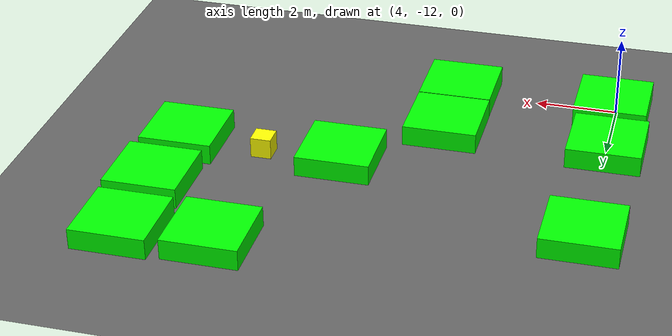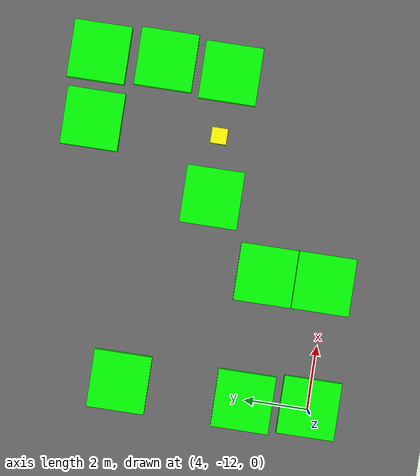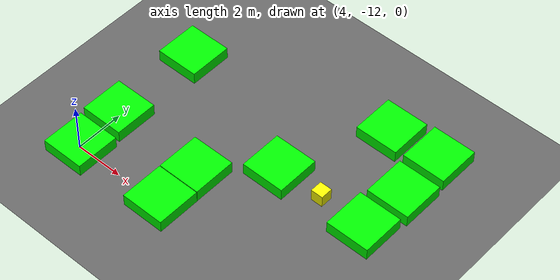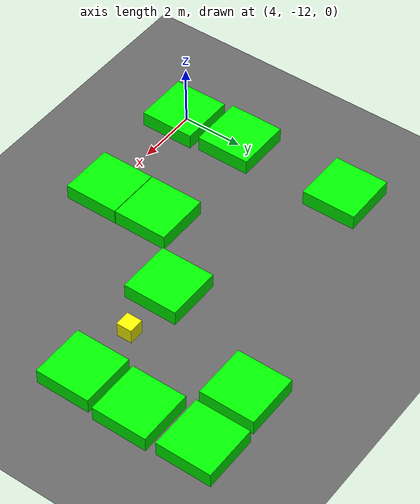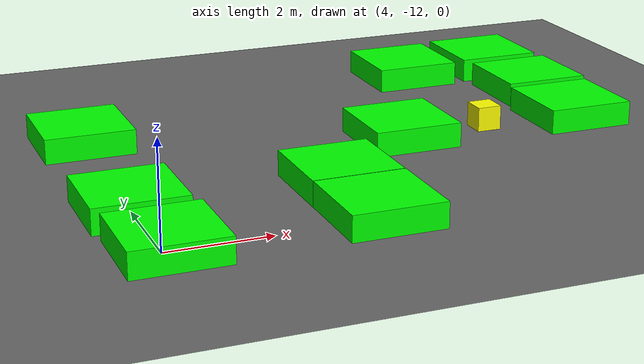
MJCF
<mujoco model="lvl5_corridor_obs10_dlong_depth3_seed50">
    <compiler angle="degree" coordinate="local" inertiafromgeom="true"/>
    <option integrator="RK4" timestep="0.01"/>

    <asset>
        <texture builtin="gradient" height="100" rgb1="0.6 0.8 1" rgb2="0 0 0" type="skybox" width="100"/>
        <texture name="floor_texture" type="2d" builtin="checker" width="100" height="100" rgb1="0 0 0" rgb2="0.8 0.8 0.8"/>
        <material name="MatPlane" reflectance="0.5" shininess="1" specular="1" texrepeat="10 10" texture="floor_texture"/>
    </asset>

    <!-- Excluding the contact between the agent and the goal, and the agent and the floor -->
    <contact>
        <exclude body1="agent" body2="goal"/>
        <exclude body1 = "agent" body2 = "floor"/>
    </contact>

    <extension>
        <plugin plugin = "mujoco.pid">
            <instance name = "pid1">
                <config key="kp" value="2"/>
                <config key="ki" value="0"/>
                <config key="kd" value="55"/>
            </instance>
        </plugin>
    </extension>

    <worldbody>
        <light cutoff="100" diffuse="1 1 1" dir="-0 0 -1.3" directional="true" exponent="1" pos="0 0 1.3" specular=".1 .1 .1"/>
        <body name="floor" pos="0 0 0">
            <geom name="floor_geom" type="plane" size="20 20 0.1" material="MatPlane"/>
        </body>

                <body name="goal" pos="0.0000 0.0000 0">
            <geom name="goal_geom" type="plane" size="0.5 0.5 1" pos="0 0 0" rgba="1 0 0 1"/>
        </body>

                <body name="agent" pos="12.0000 -8.0000 0.250">
            <joint name="j1" type="slide" axis ="1 0 0 "/>
            <joint name="j2" type="slide" axis ="0 1 0 "/>
            <geom name="agent_geom" type="box" size="0.25 0.25 0.250" rgba="1 1 0 1"/>
        </body>

        <body name="obstacle1" pos="11.9380 -4.0507 0.250">  <geom name="obstacle1_geom" type="box" size="0.9000 0.9000 0.250" rgba="0 1 0 1"/></body>
        <body name="obstacle2" pos="14.0141 -3.9519 0.250">  <geom name="obstacle2_geom" type="box" size="0.9000 0.9000 0.250" rgba="0 1 0 1"/></body>
        <body name="obstacle3" pos="4.0168 -6.0905 0.250">  <geom name="obstacle3_geom" type="box" size="0.9000 0.9000 0.250" rgba="0 1 0 1"/></body>
        <body name="obstacle4" pos="14.0861 -6.0397 0.250">  <geom name="obstacle4_geom" type="box" size="0.9000 0.9000 0.250" rgba="0 1 0 1"/></body>
        <body name="obstacle5" pos="10.0903 -8.0684 0.250">  <geom name="obstacle5_geom" type="box" size="0.9000 0.9000 0.250" rgba="0 1 0 1"/></body>
        <body name="obstacle6" pos="13.9723 -8.0698 0.250">  <geom name="obstacle6_geom" type="box" size="0.9000 0.9000 0.250" rgba="0 1 0 1"/></body>
        <body name="obstacle7" pos="3.9881 -9.9800 0.250">  <geom name="obstacle7_geom" type="box" size="0.9000 0.9000 0.250" rgba="0 1 0 1"/></body>
        <body name="obstacle8" pos="7.9568 -10.0845 0.250">  <geom name="obstacle8_geom" type="box" size="0.9000 0.9000 0.250" rgba="0 1 0 1"/></body>
        <body name="obstacle9" pos="4.0903 -12.0233 0.250">  <geom name="obstacle9_geom" type="box" size="0.9000 0.9000 0.250" rgba="0 1 0 1"/></body>
        <body name="obstacle10" pos="7.9622 -11.9033 0.250">  <geom name="obstacle10_geom" type="box" size="0.9000 0.9000 0.250" rgba="0 1 0 1"/></body>

    </worldbody>

    <sensor>
<!-- SENSORS -->

        <distance name="dist1" geom1="agent_geom" geom2="obstacle1_geom" cutoff="1.5"/>
        <distance name="dist2" geom1="agent_geom" geom2="obstacle2_geom" cutoff="1.5"/>
        <distance name="dist3" geom1="agent_geom" geom2="obstacle3_geom" cutoff="1.5"/>
        <distance name="dist4" geom1="agent_geom" geom2="obstacle4_geom" cutoff="1.5"/>
        <distance name="dist5" geom1="agent_geom" geom2="obstacle5_geom" cutoff="1.5"/>
        <distance name="dist6" geom1="agent_geom" geom2="obstacle6_geom" cutoff="1.5"/>
        <distance name="dist7" geom1="agent_geom" geom2="obstacle7_geom" cutoff="1.5"/>
        <distance name="dist8" geom1="agent_geom" geom2="obstacle8_geom" cutoff="1.5"/>
        <distance name="dist9" geom1="agent_geom" geom2="obstacle9_geom" cutoff="1.5"/>
        <distance name="dist10" geom1="agent_geom" geom2="obstacle10_geom" cutoff="1.5"/>
</sensor>

    <actuator>
        <plugin joint="j1" plugin="mujoco.pid" instance="pid1" />
        <plugin joint="j2" plugin="mujoco.pid" instance="pid1"/>
    </actuator>
</mujoco>
